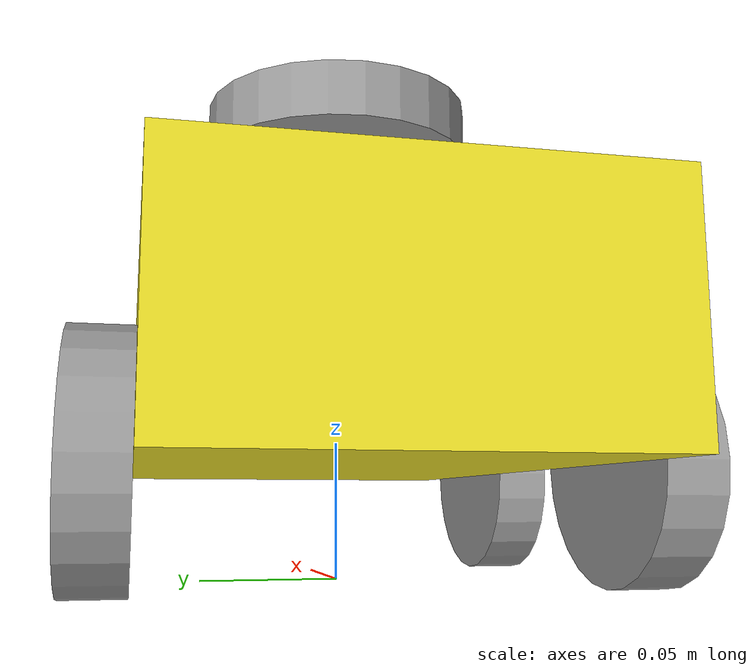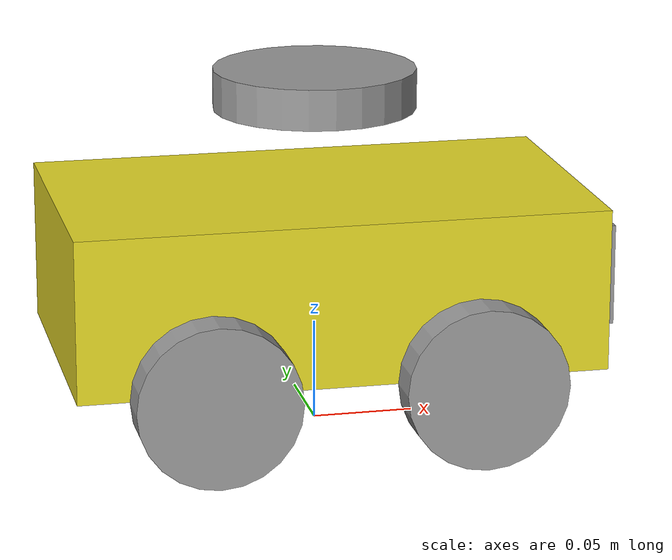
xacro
<?xml version="1.0"?>
<robot name="my_robot" xmlns:xacro="http://www.ros.org/wiki/xacro">

    <xacro:include filename="common_properties.xacro" />
    <xacro:include filename="mecanum_mobile_base.xacro" />
    <xacro:include filename="mecanum_mobile_base_gazebo.xacro" />
    <xacro:include filename="camera.xacro" />
    <xacro:include filename="lidar.xacro" />

</robot>

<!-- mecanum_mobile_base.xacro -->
<robot xmlns:xacro="http://www.ros.org/wiki/xacro">

    <xacro:property name="base_length" value="0.26" />
    <xacro:property name="base_width" value="0.15" />
    <xacro:property name="base_height" value="0.08" />
    <xacro:property name="wheel_radius" value="0.04" />
    <xacro:property name="wheel_length" value="0.02" />

    <link name="base_footprint" />
    <!-- collision and inertia box close to floor for lateral movements -->
    <link name="base_link">
        <visual>
            <geometry>
                <box size="${base_length} ${base_width} ${base_height}" />
            </geometry>
            <origin xyz="0 0 ${base_height / 2.0}" rpy="0 0 0" />
            <material name="yellow" />
        </visual>
        <collision>
            <geometry>
                <box size="${base_length} ${base_width} ${base_height}" />
            </geometry>
            <origin xyz="0 0 0.0" rpy="0 0 0" />
        </collision>
        <xacro:box_inertia m="4.0" l="${2*base_length}" w="${2*base_width}" h="${2*base_height}"
                           xyz="0 0 0.0" rpy="0 0 0" />
    </link>

    <xacro:macro name="wheel_link" params="prefix">
        <link name="${prefix}_wheel_link">
            <visual>
                <geometry>
                    <cylinder radius="${wheel_radius}" length="${wheel_length}" />
                </geometry>
                <origin xyz="0 0 0" rpy="${pi / 2.0} 0 0" />
                <material name="grey" />
            </visual>
            <collision>
                <geometry>
                    <cylinder radius="${wheel_radius}" length="${wheel_length}" />
                </geometry>
                <origin xyz="0 0 0" rpy="${pi / 2.0} 0 0" />
            </collision>
            <xacro:cylinder_inertia m="0.2" r="${2*wheel_radius}" h="${2*wheel_length}"
                                    xyz="0 0 0" rpy="${pi / 2.0} 0 0" />
        </link>
    </xacro:macro>

    <xacro:wheel_link prefix="lower_right" />
    <xacro:wheel_link prefix="lower_left" />
    <xacro:wheel_link prefix="upper_right" />
    <xacro:wheel_link prefix="upper_left" />

    <joint name="base_joint" type="fixed">
        <parent link="base_footprint" />
        <child link="base_link" />
        <origin xyz="0 0 ${wheel_radius}" rpy="0 0 0"/>
    </joint>

    <joint name="lower_right_wheel_joint" type="continuous">
        <parent link="base_link" />
        <child link="lower_right_wheel_link" />
        <origin xyz="${-base_length / 4.0} ${-(base_width + wheel_length) / 2.0} 0" rpy="0 0 0" />
        <axis xyz="0 1 0" />
    </joint>

    <joint name="lower_left_wheel_joint" type="continuous">
        <parent link="base_link" />
        <child link="lower_left_wheel_link" />
        <origin xyz="${-base_length / 4.0} ${(base_width + wheel_length) / 2.0} 0" rpy="0 0 0" />
        <axis xyz="0 1 0" />
    </joint>

    <joint name="upper_right_wheel_joint" type="continuous">
        <parent link="base_link" />
        <child link="upper_right_wheel_link" />
        <origin xyz="${base_length / 4.0} ${-(base_width + wheel_length) / 2.0} 0" rpy="0 0 0" />
        <axis xyz="0 1 0" />
    </joint>

    <joint name="upper_left_wheel_joint" type="continuous">
        <parent link="base_link" />
        <child link="upper_left_wheel_link" />
        <origin xyz="${base_length / 4.0} ${(base_width + wheel_length) / 2.0} 0" rpy="0 0 0" />
        <axis xyz="0 1 0" />
    </joint>

</robot>

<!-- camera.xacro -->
<robot xmlns:xacro="http://www.ros.org/wiki/xacro">

    <xacro:property name="camera_length" value="0.01" />
    <xacro:property name="camera_width" value="0.1" />
    <xacro:property name="camera_height" value="0.05" />

    <link name="camera_link">
        <visual>
            <geometry>
                <box size="${camera_length} ${camera_width} ${camera_height}" />
            </geometry>
            <material name="grey" />
        </visual>
        <collision>
            <geometry>
                <box size="${camera_length} ${camera_width} ${camera_height}" />
            </geometry>
        </collision>
        <xacro:box_inertia m="0.1" l="${camera_length}" w="${camera_width}" h="${camera_height}"
                           xyz="0 0 0" rpy="0 0 0" />
    </link>

    <joint name="base_camera_joint" type="fixed">
        <parent link="base_link" />
        <child link="camera_link" />
        <origin xyz="${(base_length + camera_length) / 2.0} 0 ${base_height / 2.0}" rpy="0 0 0" />
    </joint>

    <link name="camera_link_optical">
    </link>

    <joint name="camera_optical_joint" type="fixed">
        <!-- these values have to be these values otherwise the gazebo camera
            image won't be aligned properly with the frame it is supposedly
            originating from -->
        <origin xyz="0 0 0" rpy="${-pi/2} 0 ${-pi/2}"/>
        <parent link="camera_link"/>
        <child link="camera_link_optical"/>
    </joint>

    <gazebo reference="camera_link">
        <material>Gazebo/Red</material>
        <sensor name="camera_sensor" type="camera">
            <pose>0 0 0 0 0 0</pose>
            <visualize>false</visualize>
            <update_rate>10.0</update_rate>
            <plugin name="camera_controller" filename="libgazebo_ros_camera.so">
                <frame_name>camera_link_optical</frame_name>
            </plugin>
        </sensor>
    </gazebo>

</robot>

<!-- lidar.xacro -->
<robot xmlns:xacro="http://www.ros.org/wiki/xacro">

    <xacro:property name="lidar_radius" value="0.05" />
    <xacro:property name="lidar_length" value="0.02" />

    <link name="base_scan">
        <visual>
            <geometry>
                <cylinder radius="${lidar_radius}" length="${lidar_length}" />
            </geometry>
            <material name="grey" />
        </visual>
        <collision>
            <geometry>
                <cylinder radius="${lidar_radius}" length="${lidar_length}" />
            </geometry>
        </collision>
        <xacro:cylinder_inertia m="0.1" r="${2*lidar_radius}" h="${2*lidar_length}"
                                xyz="0 0 0" rpy="0 0 0" />
    </link>

    <joint name="base_scan_joint" type="fixed">
        <parent link="base_link" />
        <child link="base_scan" />
        <origin xyz="0 0 ${base_height+0.05}" rpy="0 0 3.14" />
    </joint>

    <gazebo reference="base_scan">
        <sensor name="lidar" type="ray">
        <pose>0.215 0 0.215 0 0 0</pose>
        <always_on>true</always_on>
        <visualize>false</visualize>
        <update_rate>5</update_rate>
        <ray>
            <scan>
                <horizontal>
                    <samples>720</samples>
                    <resolution>1.00000</resolution>
                    <min_angle>0.000000</min_angle>
                    <max_angle>6.280000</max_angle>
                </horizontal>
            </scan>
            <range>
                <min>0.120000</min>
                <max>3.5</max>
                <resolution>0.015000</resolution>
            </range>
            <noise>
                <type>gaussian</type>
                <mean>0.0</mean>
                <stddev>0.01</stddev>
            </noise>
        </ray>
        <plugin name="scan" filename="libgazebo_ros_ray_sensor.so">
            <ros>
                <remapping>~/out:=scan</remapping>
            </ros>
            <output_type>sensor_msgs/LaserScan</output_type>
            <frame_name>base_scan</frame_name>
        </plugin>
        </sensor>
    </gazebo>

</robot>
